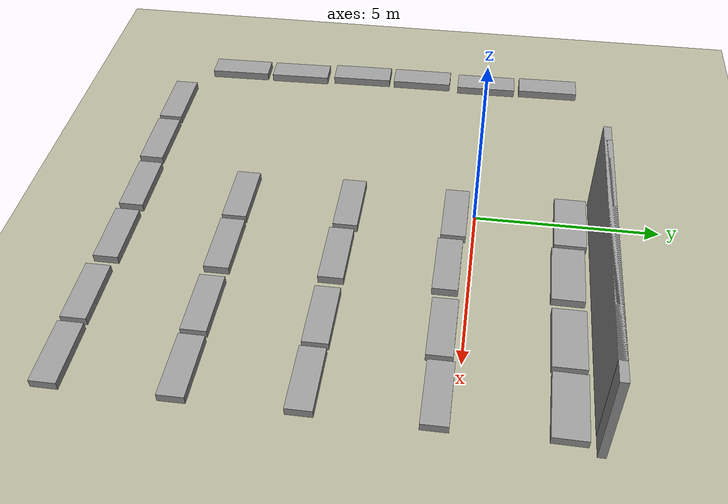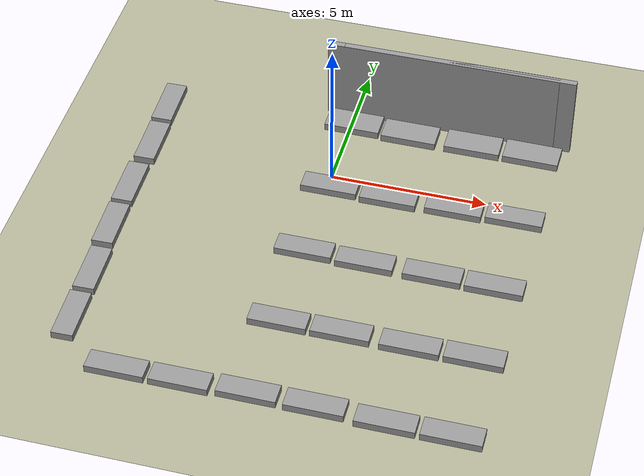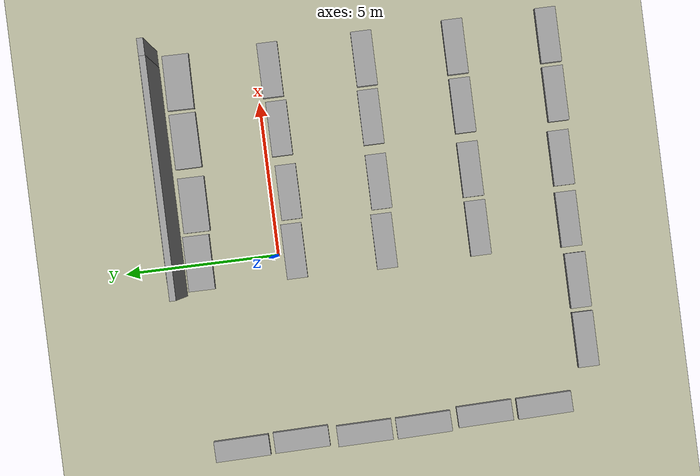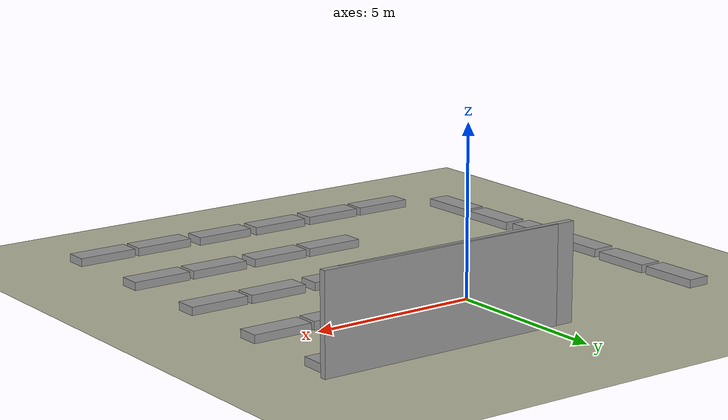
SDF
<sdf version="1.7">
 <world name="default">
  <gravity>0 0 -9.8</gravity>
  <physics name="default_physics" default="0" type="ode">
   <max_step_size>0.001</max_step_size>
   <real_time_factor>1</real_time_factor>
   <real_time_update_rate>1000</real_time_update_rate>
  </physics>
  <light name="Warehouse_CeilingLight_003" type="point">
   <pose>0 0 9 0 -0 0</pose>
   <diffuse>0.5 0.5 0.5 1</diffuse>
   <specular>0.2 0.2 0.2 1</specular>
   <attenuation>
    <range>80</range>
    <constant>0.3</constant>
    <linear>0.01</linear>
    <quadratic>0.001</quadratic>
   </attenuation>
   <direction>0.1 0.1 -1</direction>
   <spot><inner_angle>0</inner_angle><outer_angle>0</outer_angle><falloff>0</falloff></spot>
  </light>
  <magnetic_field>6e-06 2.3e-05 -4.2e-05</magnetic_field>
  <atmosphere type="adiabatic"/>
  <scene><ambient>0.4 0.4 0.4 1</ambient><background>0.7 0.7 0.7 1</background><shadows>1</shadows></scene>
  <spherical_coordinates>
   <surface_model>EARTH_WGS84</surface_model>
   <latitude_deg>0</latitude_deg>
   <longitude_deg>0</longitude_deg>
   <elevation>0</elevation>
   <heading_deg>0</heading_deg>
  </spherical_coordinates>
  <model name="ground_plane_residential">
   <static>1</static>
   <link name="link">
    <collision name="collision">
     <geometry><plane><normal>0 0 1</normal><size>100 100</size></plane></geometry>
     <surface><friction><ode><mu>100</mu><mu2>50</mu2></ode></friction></surface>
    </collision>
    <visual name="visual">
     <cast_shadows>0</cast_shadows>
     <geometry><plane><normal>0 0 1</normal><size>100 100</size></plane></geometry>
     <material>
      <script><uri>file://media/materials/scripts/gazebo.material</uri><name>Gazebo/Residential</name></script>
     </material>
    </visual>
   </link>
   <pose>5.00951 -6.46947 0 0 -0 0</pose>
  </model>
  <model name="grey_wall">
   <static>1</static>
   <link name="link">
    <pose>0 0 1.4 0 -0 0</pose>
    <collision name="collision"><geometry><box><size>7.5 0.2 2.8</size></box></geometry></collision>
    <visual name="visual">
     <cast_shadows>0</cast_shadows>
     <geometry><box><size>7.5 0.2 2.8</size></box></geometry>
     <material>
      <script>
       <uri>model://grey_wall/materials/scripts</uri>
       <uri>model://grey_wall/materials/textures</uri>
       <name>vrc/grey_wall</name>
      </script>
     </material>
    </visual>
   </link>
   <pose>2.80903 3.20071 0 0 -0 0</pose>
  </model>
  <model name="grey_wall_clone">
   <static>1</static>
   <link name="link">
    <pose>0 0 1.4 0 -0 0</pose>
    <collision name="collision"><geometry><box><size>7.5 0.2 2.8</size></box></geometry></collision>
    <visual name="visual">
     <cast_shadows>0</cast_shadows>
     <geometry><box><size>7.5 0.2 2.8</size></box></geometry>
     <material>
      <script>
       <uri>model://grey_wall/materials/scripts</uri>
       <uri>model://grey_wall/materials/textures</uri>
       <name>vrc/grey_wall</name>
      </script>
     </material>
    </visual>
   </link>
   <pose>3.34712 3.20678 0 0 -0 0</pose>
  </model>
  <model name="unit_box_clone_2_clone">
   <pose>4.09103 -0.535967 0.119793 -1.3e-05 -0 -4.1e-05</pose>
   <link name="link">
    <inertial>
     <mass>1</mass>
     <inertia>
      <ixx>0.166667</ixx>
      <ixy>0</ixy>
      <ixz>0</ixz>
      <iyy>0.166667</iyy>
      <iyz>0</iyz>
      <izz>0.166667</izz>
     </inertia>
    </inertial>
    <collision name="collision"><geometry><box><size>1.78973 0.671476 0.239596</size></box></geometry></collision>
    <visual name="visual">
     <geometry><box><size>1.78973 0.671476 0.239596</size></box></geometry>
     <material>
      <script><name>Gazebo/Grey</name><uri>file://media/materials/scripts/gazebo.material</uri></script>
     </material>
    </visual>
   </link>
  </model>
  <model name="unit_box_clone_2_clone_0">
   <pose>2.00829 -0.581028 0.119793 -1.3e-05 -0 -1.1e-05</pose>
   <link name="link">
    <inertial>
     <mass>1</mass>
     <inertia>
      <ixx>0.166667</ixx>
      <ixy>0</ixy>
      <ixz>0</ixz>
      <iyy>0.166667</iyy>
      <iyz>0</iyz>
      <izz>0.166667</izz>
     </inertia>
    </inertial>
    <collision name="collision"><geometry><box><size>1.78973 0.671476 0.239596</size></box></geometry></collision>
    <visual name="visual">
     <geometry><box><size>1.78973 0.671476 0.239596</size></box></geometry>
     <material>
      <script><name>Gazebo/Grey</name><uri>file://media/materials/scripts/gazebo.material</uri></script>
     </material>
    </visual>
   </link>
  </model>
  <model name="unit_box_clone_2_clone_1">
   <pose>0.091098 -0.523033 0.119793 -1.3e-05 -0 -1e-06</pose>
   <link name="link">
    <inertial>
     <mass>1</mass>
     <inertia>
      <ixx>0.166667</ixx>
      <ixy>0</ixy>
      <ixz>0</ixz>
      <iyy>0.166667</iyy>
      <iyz>0</iyz>
      <izz>0.166667</izz>
     </inertia>
    </inertial>
    <collision name="collision"><geometry><box><size>1.78973 0.671476 0.239596</size></box></geometry></collision>
    <visual name="visual">
     <geometry><box><size>1.78973 0.671476 0.239596</size></box></geometry>
     <material>
      <script><name>Gazebo/Grey</name><uri>file://media/materials/scripts/gazebo.material</uri></script>
     </material>
    </visual>
   </link>
  </model>
  <model name="unit_box_clone_2_clone_1_clone">
   <pose>0.04741 -3.45904 0.119793 -1.3e-05 -0 -1e-06</pose>
   <link name="link">
    <inertial>
     <mass>1</mass>
     <inertia>
      <ixx>0.166667</ixx>
      <ixy>0</ixy>
      <ixz>0</ixz>
      <iyy>0.166667</iyy>
      <iyz>0</iyz>
      <izz>0.166667</izz>
     </inertia>
    </inertial>
    <collision name="collision"><geometry><box><size>1.78973 0.671476 0.239596</size></box></geometry></collision>
    <visual name="visual">
     <geometry><box><size>1.78973 0.671476 0.239596</size></box></geometry>
     <material>
      <script><name>Gazebo/Grey</name><uri>file://media/materials/scripts/gazebo.material</uri></script>
     </material>
    </visual>
   </link>
  </model>
  <model name="unit_box_clone_2_clone_1_clone_0">
   <pose>1.98103 -3.51931 0.119793 -1.3e-05 -0 -1e-06</pose>
   <link name="link">
    <inertial>
     <mass>1</mass>
     <inertia>
      <ixx>0.166667</ixx>
      <ixy>0</ixy>
      <ixz>0</ixz>
      <iyy>0.166667</iyy>
      <iyz>0</iyz>
      <izz>0.166667</izz>
     </inertia>
    </inertial>
    <collision name="collision"><geometry><box><size>1.78973 0.671476 0.239596</size></box></geometry></collision>
    <visual name="visual">
     <geometry><box><size>1.78973 0.671476 0.239596</size></box></geometry>
     <material>
      <script><name>Gazebo/Grey</name><uri>file://media/materials/scripts/gazebo.material</uri></script>
     </material>
    </visual>
   </link>
  </model>
  <model name="unit_box_clone_2_clone_1_clone_1">
   <pose>4.08793 -3.52641 0.119793 -1.3e-05 -0 -1e-06</pose>
   <link name="link">
    <inertial>
     <mass>1</mass>
     <inertia>
      <ixx>0.166667</ixx>
      <ixy>0</ixy>
      <ixz>0</ixz>
      <iyy>0.166667</iyy>
      <iyz>0</iyz>
      <izz>0.166667</izz>
     </inertia>
    </inertial>
    <collision name="collision"><geometry><box><size>1.78973 0.671476 0.239596</size></box></geometry></collision>
    <visual name="visual">
     <geometry><box><size>1.78973 0.671476 0.239596</size></box></geometry>
     <material>
      <script><name>Gazebo/Grey</name><uri>file://media/materials/scripts/gazebo.material</uri></script>
     </material>
    </visual>
   </link>
  </model>
  <model name="unit_box_clone_2_clone_1_clone_2">
   <pose>5.99796 -3.5479 0.119793 -1.3e-05 -0 -1e-06</pose>
   <link name="link">
    <inertial>
     <mass>1</mass>
     <inertia>
      <ixx>0.166667</ixx>
      <ixy>0</ixy>
      <ixz>0</ixz>
      <iyy>0.166667</iyy>
      <iyz>0</iyz>
      <izz>0.166667</izz>
     </inertia>
    </inertial>
    <collision name="collision"><geometry><box><size>1.78973 0.671476 0.239596</size></box></geometry></collision>
    <visual name="visual">
     <geometry><box><size>1.78973 0.671476 0.239596</size></box></geometry>
     <material>
      <script><name>Gazebo/Grey</name><uri>file://media/materials/scripts/gazebo.material</uri></script>
     </material>
    </visual>
   </link>
  </model>
  <model name="unit_box_clone_2_clone_1_clone_3">
   <pose>6.00818 -9.55888 0.119793 -1.3e-05 -0 5.2e-05</pose>
   <link name="link">
    <inertial>
     <mass>1</mass>
     <inertia>
      <ixx>0.166667</ixx>
      <ixy>0</ixy>
      <ixz>0</ixz>
      <iyy>0.166667</iyy>
      <iyz>0</iyz>
      <izz>0.166667</izz>
     </inertia>
    </inertial>
    <collision name="collision"><geometry><box><size>1.78973 0.671476 0.239596</size></box></geometry></collision>
    <visual name="visual">
     <geometry><box><size>1.78973 0.671476 0.239596</size></box></geometry>
     <material>
      <script><name>Gazebo/Grey</name><uri>file://media/materials/scripts/gazebo.material</uri></script>
     </material>
    </visual>
   </link>
  </model>
  <model name="unit_box_clone_2_clone_1_clone_4">
   <pose>4.0911 -9.55886 0.119793 -1.3e-05 -0 -1.4e-05</pose>
   <link name="link">
    <inertial>
     <mass>1</mass>
     <inertia>
      <ixx>0.166667</ixx>
      <ixy>0</ixy>
      <ixz>0</ixz>
      <iyy>0.166667</iyy>
      <iyz>0</iyz>
      <izz>0.166667</izz>
     </inertia>
    </inertial>
    <collision name="collision"><geometry><box><size>1.78973 0.671476 0.239596</size></box></geometry></collision>
    <visual name="visual">
     <geometry><box><size>1.78973 0.671476 0.239596</size></box></geometry>
     <material>
      <script><name>Gazebo/Grey</name><uri>file://media/materials/scripts/gazebo.material</uri></script>
     </material>
    </visual>
   </link>
  </model>
  <model name="unit_box_clone_2_clone_1_clone_5">
   <pose>2.00831 -9.48307 0.119793 -1.3e-05 -0 -3e-06</pose>
   <link name="link">
    <inertial>
     <mass>1</mass>
     <inertia>
      <ixx>0.166667</ixx>
      <ixy>0</ixy>
      <ixz>0</ixz>
      <iyy>0.166667</iyy>
      <iyz>0</iyz>
      <izz>0.166667</izz>
     </inertia>
    </inertial>
    <collision name="collision"><geometry><box><size>1.78973 0.671476 0.239596</size></box></geometry></collision>
    <visual name="visual">
     <geometry><box><size>1.78973 0.671476 0.239596</size></box></geometry>
     <material>
      <script><name>Gazebo/Grey</name><uri>file://media/materials/scripts/gazebo.material</uri></script>
     </material>
    </visual>
   </link>
  </model>
  <model name="unit_box_clone_2_clone_1_clone_6">
   <pose>0.01324 -9.46841 0.119793 -1.3e-05 -0 -1e-06</pose>
   <link name="link">
    <inertial>
     <mass>1</mass>
     <inertia>
      <ixx>0.166667</ixx>
      <ixy>0</ixy>
      <ixz>0</ixz>
      <iyy>0.166667</iyy>
      <iyz>0</iyz>
      <izz>0.166667</izz>
     </inertia>
    </inertial>
    <collision name="collision"><geometry><box><size>1.78973 0.671476 0.239596</size></box></geometry></collision>
    <visual name="visual">
     <geometry><box><size>1.78973 0.671476 0.239596</size></box></geometry>
     <material>
      <script><name>Gazebo/Grey</name><uri>file://media/materials/scripts/gazebo.material</uri></script>
     </material>
    </visual>
   </link>
  </model>
  <model name="unit_box_clone_2_clone_1_clone_7">
   <pose>-1.9917 -9.52852 0.119793 -1.3e-05 0 -6e-06</pose>
   <link name="link">
    <inertial>
     <mass>1</mass>
     <inertia>
      <ixx>0.166667</ixx>
      <ixy>0</ixy>
      <ixz>0</ixz>
      <iyy>0.166667</iyy>
      <iyz>0</iyz>
      <izz>0.166667</izz>
     </inertia>
    </inertial>
    <collision name="collision"><geometry><box><size>1.78973 0.671476 0.239596</size></box></geometry></collision>
    <visual name="visual">
     <geometry><box><size>1.78973 0.671476 0.239596</size></box></geometry>
     <material>
      <script><name>Gazebo/Grey</name><uri>file://media/materials/scripts/gazebo.material</uri></script>
     </material>
    </visual>
   </link>
  </model>
  <model name="unit_box_clone_2_clone_1_clone_8">
   <pose>-3.91964 -9.53501 0.119793 -1.3e-05 -0 -1e-06</pose>
   <link name="link">
    <inertial>
     <mass>1</mass>
     <inertia>
      <ixx>0.166667</ixx>
      <ixy>0</ixy>
      <ixz>0</ixz>
      <iyy>0.166667</iyy>
      <iyz>0</iyz>
      <izz>0.166667</izz>
     </inertia>
    </inertial>
    <collision name="collision"><geometry><box><size>1.78973 0.671476 0.239596</size></box></geometry></collision>
    <visual name="visual">
     <geometry><box><size>1.78973 0.671476 0.239596</size></box></geometry>
     <material>
      <script><name>Gazebo/Grey</name><uri>file://media/materials/scripts/gazebo.material</uri></script>
     </material>
    </visual>
   </link>
  </model>
  <model name="unit_box_clone_2_clone_1_clone_9">
   <pose>-5.88123 -7.95301 0.119793 -1.3e-05 -0 1.59163</pose>
   <link name="link">
    <inertial>
     <mass>1</mass>
     <inertia>
      <ixx>0.166667</ixx>
      <ixy>0</ixy>
      <ixz>0</ixz>
      <iyy>0.166667</iyy>
      <iyz>0</iyz>
      <izz>0.166667</izz>
     </inertia>
    </inertial>
    <collision name="collision"><geometry><box><size>1.78973 0.671476 0.239596</size></box></geometry></collision>
    <visual name="visual">
     <geometry><box><size>1.78973 0.671476 0.239596</size></box></geometry>
     <material>
      <script><name>Gazebo/Grey</name><uri>file://media/materials/scripts/gazebo.material</uri></script>
     </material>
    </visual>
   </link>
  </model>
  <model name="unit_box_clone_2_clone_1_clone_9_clone">
   <pose>-5.91032 -5.99927 0.119793 -1.3e-05 -0 1.59163</pose>
   <link name="link">
    <inertial>
     <mass>1</mass>
     <inertia>
      <ixx>0.166667</ixx>
      <ixy>0</ixy>
      <ixz>0</ixz>
      <iyy>0.166667</iyy>
      <iyz>0</iyz>
      <izz>0.166667</izz>
     </inertia>
    </inertial>
    <collision name="collision"><geometry><box><size>1.78973 0.671476 0.239596</size></box></geometry></collision>
    <visual name="visual">
     <geometry><box><size>1.78973 0.671476 0.239596</size></box></geometry>
     <material>
      <script><name>Gazebo/Grey</name><uri>file://media/materials/scripts/gazebo.material</uri></script>
     </material>
    </visual>
   </link>
  </model>
  <model name="unit_box_clone_2_clone_1_clone_9_clone_0">
   <pose>-6.02042 -3.99343 0.119793 -1.3e-05 -0 1.59163</pose>
   <link name="link">
    <inertial>
     <mass>1</mass>
     <inertia>
      <ixx>0.166667</ixx>
      <ixy>0</ixy>
      <ixz>0</ixz>
      <iyy>0.166667</iyy>
      <iyz>0</iyz>
      <izz>0.166667</izz>
     </inertia>
    </inertial>
    <collision name="collision"><geometry><box><size>1.78973 0.671476 0.239596</size></box></geometry></collision>
    <visual name="visual">
     <geometry><box><size>1.78973 0.671476 0.239596</size></box></geometry>
     <material>
      <script><name>Gazebo/Grey</name><uri>file://media/materials/scripts/gazebo.material</uri></script>
     </material>
    </visual>
   </link>
  </model>
  <model name="unit_box_clone_2_clone_1_clone_9_clone_1">
   <pose>-6.04252 -2.05955 0.119793 -1.3e-05 -0 1.58134</pose>
   <link name="link">
    <inertial>
     <mass>1</mass>
     <inertia>
      <ixx>0.166667</ixx>
      <ixy>0</ixy>
      <ixz>0</ixz>
      <iyy>0.166667</iyy>
      <iyz>0</iyz>
      <izz>0.166667</izz>
     </inertia>
    </inertial>
    <collision name="collision"><geometry><box><size>1.78973 0.671476 0.239596</size></box></geometry></collision>
    <visual name="visual">
     <geometry><box><size>1.78973 0.671476 0.239596</size></box></geometry>
     <material>
      <script><name>Gazebo/Grey</name><uri>file://media/materials/scripts/gazebo.material</uri></script>
     </material>
    </visual>
   </link>
  </model>
  <model name="unit_box_clone_2_clone_1_clone_9_clone_2">
   <pose>-5.99535 -0.00339 0.119793 -1.3e-05 -0 1.58536</pose>
   <link name="link">
    <inertial>
     <mass>1</mass>
     <inertia>
      <ixx>0.166667</ixx>
      <ixy>0</ixy>
      <ixz>0</ixz>
      <iyy>0.166667</iyy>
      <iyz>0</iyz>
      <izz>0.166667</izz>
     </inertia>
    </inertial>
    <collision name="collision"><geometry><box><size>1.78973 0.671476 0.239596</size></box></geometry></collision>
    <visual name="visual">
     <geometry><box><size>1.78973 0.671476 0.239596</size></box></geometry>
     <material>
      <script><name>Gazebo/Grey</name><uri>file://media/materials/scripts/gazebo.material</uri></script>
     </material>
    </visual>
   </link>
  </model>
  <model name="unit_box_clone_2_clone_1_clone_9_clone_3">
   <pose>-6.04879 1.94231 0.119793 -1.3e-05 -0 1.58729</pose>
   <link name="link">
    <inertial>
     <mass>1</mass>
     <inertia>
      <ixx>0.166667</ixx>
      <ixy>0</ixy>
      <ixz>0</ixz>
      <iyy>0.166667</iyy>
      <iyz>0</iyz>
      <izz>0.166667</izz>
     </inertia>
    </inertial>
    <collision name="collision"><geometry><box><size>1.78973 0.671476 0.239596</size></box></geometry></collision>
    <visual name="visual">
     <geometry><box><size>1.78973 0.671476 0.239596</size></box></geometry>
     <material>
      <script><name>Gazebo/Grey</name><uri>file://media/materials/scripts/gazebo.material</uri></script>
     </material>
    </visual>
   </link>
  </model>
  <model name="unit_box_clone_clone">
   <pose>1.97859 2.51808 0.119793 -1.1e-05 0 -0.006316</pose>
   <link name="link">
    <inertial>
     <mass>1</mass>
     <inertia>
      <ixx>0.166667</ixx>
      <ixy>0</ixy>
      <ixz>0</ixz>
      <iyy>0.166667</iyy>
      <iyz>0</iyz>
      <izz>0.166667</izz>
     </inertia>
    </inertial>
    <collision name="collision"><geometry><box><size>1.78973 0.859072 0.239596</size></box></geometry></collision>
    <visual name="visual">
     <geometry><box><size>1.78973 0.859072 0.239596</size></box></geometry>
     <material>
      <script><name>Gazebo/Grey</name><uri>file://media/materials/scripts/gazebo.material</uri></script>
     </material>
    </visual>
   </link>
  </model>
  <model name="unit_box_clone_clone_0">
   <pose>4.06306 2.52949 0.119793 1.1e-05 -0 0.000981</pose>
   <link name="link">
    <inertial>
     <mass>1</mass>
     <inertia>
      <ixx>0.166667</ixx>
      <ixy>0</ixy>
      <ixz>0</ixz>
      <iyy>0.166667</iyy>
      <iyz>0</iyz>
      <izz>0.166667</izz>
     </inertia>
    </inertial>
    <collision name="collision"><geometry><box><size>1.78973 0.859072 0.239596</size></box></geometry></collision>
    <visual name="visual">
     <geometry><box><size>1.78973 0.859072 0.239596</size></box></geometry>
     <material>
      <script><name>Gazebo/Grey</name><uri>file://media/materials/scripts/gazebo.material</uri></script>
     </material>
    </visual>
   </link>
  </model>
  <model name="unit_box_clone_clone_1">
   <pose>5.98072 2.52889 0.119793 1.2e-05 -0 -0.012961</pose>
   <link name="link">
    <inertial>
     <mass>1</mass>
     <inertia>
      <ixx>0.166667</ixx>
      <ixy>0</ixy>
      <ixz>0</ixz>
      <iyy>0.166667</iyy>
      <iyz>0</iyz>
      <izz>0.166667</izz>
     </inertia>
    </inertial>
    <collision name="collision"><geometry><box><size>1.78973 0.859072 0.239596</size></box></geometry></collision>
    <visual name="visual">
     <geometry><box><size>1.78973 0.859072 0.239596</size></box></geometry>
     <material>
      <script><name>Gazebo/Grey</name><uri>file://media/materials/scripts/gazebo.material</uri></script>
     </material>
    </visual>
   </link>
  </model>
  <model name="unit_box_clone_2_clone_clone">
   <pose>6.0083 -0.47906 0.119793 1.3e-05 -0 -5e-06</pose>
   <link name="link">
    <inertial>
     <mass>1</mass>
     <inertia>
      <ixx>0.166667</ixx>
      <ixy>0</ixy>
      <ixz>0</ixz>
      <iyy>0.166667</iyy>
      <iyz>0</iyz>
      <izz>0.166667</izz>
     </inertia>
    </inertial>
    <collision name="collision"><geometry><box><size>1.78973 0.671476 0.239596</size></box></geometry></collision>
    <visual name="visual">
     <geometry><box><size>1.78973 0.671476 0.239596</size></box></geometry>
     <material>
      <script><name>Gazebo/Grey</name><uri>file://media/materials/scripts/gazebo.material</uri></script>
     </material>
    </visual>
   </link>
  </model>
  <model name="unit_box_clone_clone_clone">
   <pose>0.08477 2.58964 0.119793 1.2e-05 -0 -0.005936</pose>
   <link name="link">
    <inertial>
     <mass>1</mass>
     <inertia>
      <ixx>0.166667</ixx>
      <ixy>0</ixy>
      <ixz>0</ixz>
      <iyy>0.166667</iyy>
      <iyz>0</iyz>
      <izz>0.166667</izz>
     </inertia>
    </inertial>
    <collision name="collision"><geometry><box><size>1.78973 0.859072 0.239596</size></box></geometry></collision>
    <visual name="visual">
     <geometry><box><size>1.78973 0.859072 0.239596</size></box></geometry>
     <material>
      <script><name>Gazebo/Grey</name><uri>file://media/materials/scripts/gazebo.material</uri></script>
     </material>
    </visual>
   </link>
  </model>
  <model name="unit_box_clone_2_clone_1_clone_8_clone">
   <pose>6.0083 -6.51736 0.119793 1.3e-05 0 -5.5e-05</pose>
   <link name="link">
    <inertial>
     <mass>1</mass>
     <inertia>
      <ixx>0.166667</ixx>
      <ixy>0</ixy>
      <ixz>0</ixz>
      <iyy>0.166667</iyy>
      <iyz>0</iyz>
      <izz>0.166667</izz>
     </inertia>
    </inertial>
    <collision name="collision"><geometry><box><size>1.78973 0.671476 0.239596</size></box></geometry></collision>
    <visual name="visual">
     <geometry><box><size>1.78973 0.671476 0.239596</size></box></geometry>
     <material>
      <script><name>Gazebo/Grey</name><uri>file://media/materials/scripts/gazebo.material</uri></script>
     </material>
    </visual>
   </link>
  </model>
  <model name="unit_box_clone_2_clone_1_clone_8_clone_0">
   <pose>4.09109 -6.52522 0.119798 0 -0 -2.6e-05</pose>
   <link name="link">
    <inertial>
     <mass>1</mass>
     <inertia>
      <ixx>0.166667</ixx>
      <ixy>0</ixy>
      <ixz>0</ixz>
      <iyy>0.166667</iyy>
      <iyz>0</iyz>
      <izz>0.166667</izz>
     </inertia>
    </inertial>
    <collision name="collision"><geometry><box><size>1.78973 0.671476 0.239596</size></box></geometry></collision>
    <visual name="visual">
     <geometry><box><size>1.78973 0.671476 0.239596</size></box></geometry>
     <material>
      <script><name>Gazebo/Grey</name><uri>file://media/materials/scripts/gazebo.material</uri></script>
     </material>
    </visual>
   </link>
  </model>
  <model name="unit_box_clone_2_clone_1_clone_8_clone_1">
   <pose>2.00825 -6.51699 0.119793 -1.3e-05 -0 -1.4e-05</pose>
   <link name="link">
    <inertial>
     <mass>1</mass>
     <inertia>
      <ixx>0.166667</ixx>
      <ixy>0</ixy>
      <ixz>0</ixz>
      <iyy>0.166667</iyy>
      <iyz>0</iyz>
      <izz>0.166667</izz>
     </inertia>
    </inertial>
    <collision name="collision"><geometry><box><size>1.78973 0.671476 0.239596</size></box></geometry></collision>
    <visual name="visual">
     <geometry><box><size>1.78973 0.671476 0.239596</size></box></geometry>
     <material>
      <script><name>Gazebo/Grey</name><uri>file://media/materials/scripts/gazebo.material</uri></script>
     </material>
    </visual>
   </link>
  </model>
  <model name="unit_box_clone_2_clone_1_clone_8_clone_2">
   <pose>0.091059 -6.52293 0.119798 0 0 -4e-06</pose>
   <link name="link">
    <inertial>
     <mass>1</mass>
     <inertia>
      <ixx>0.166667</ixx>
      <ixy>0</ixy>
      <ixz>0</ixz>
      <iyy>0.166667</iyy>
      <iyz>0</iyz>
      <izz>0.166667</izz>
     </inertia>
    </inertial>
    <collision name="collision"><geometry><box><size>1.78973 0.671476 0.239596</size></box></geometry></collision>
    <visual name="visual">
     <geometry><box><size>1.78973 0.671476 0.239596</size></box></geometry>
     <material>
      <script><name>Gazebo/Grey</name><uri>file://media/materials/scripts/gazebo.material</uri></script>
     </material>
    </visual>
   </link>
  </model>
 </world>
</sdf>
